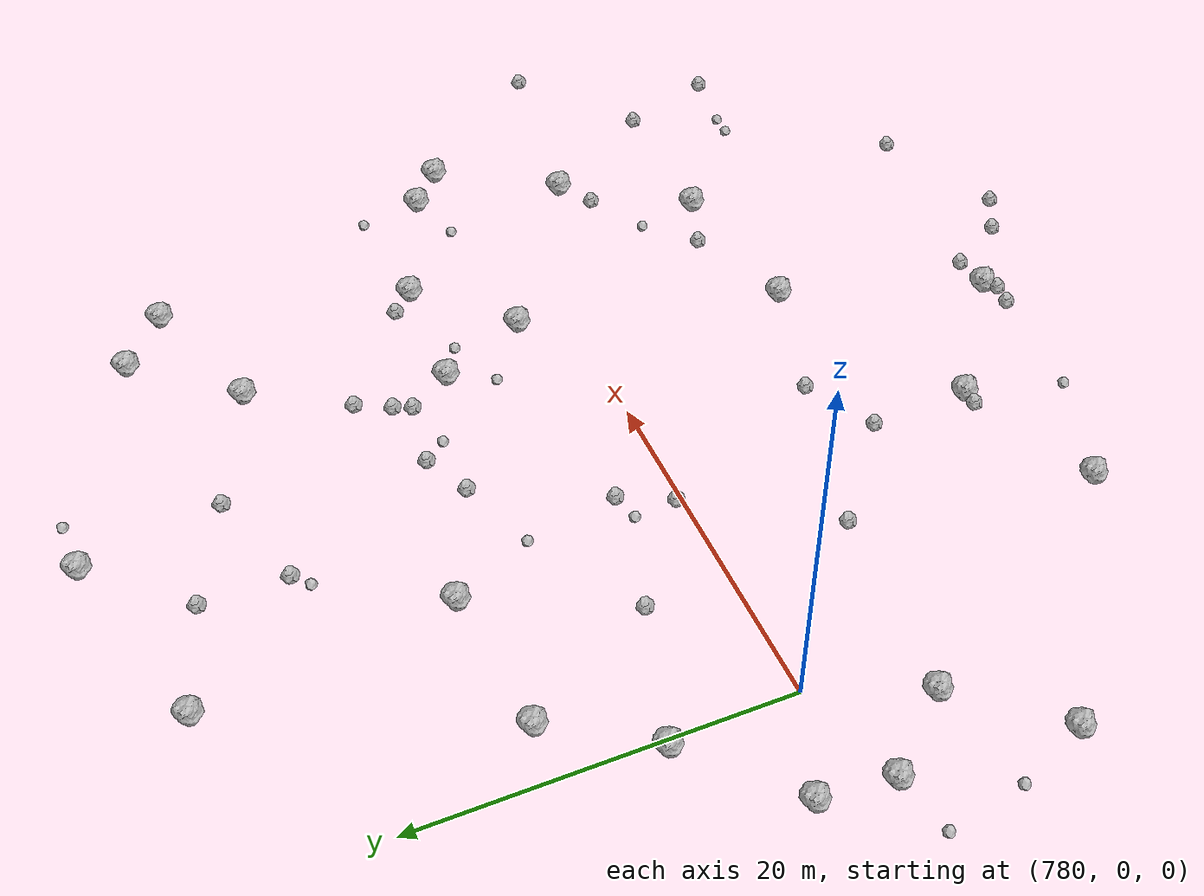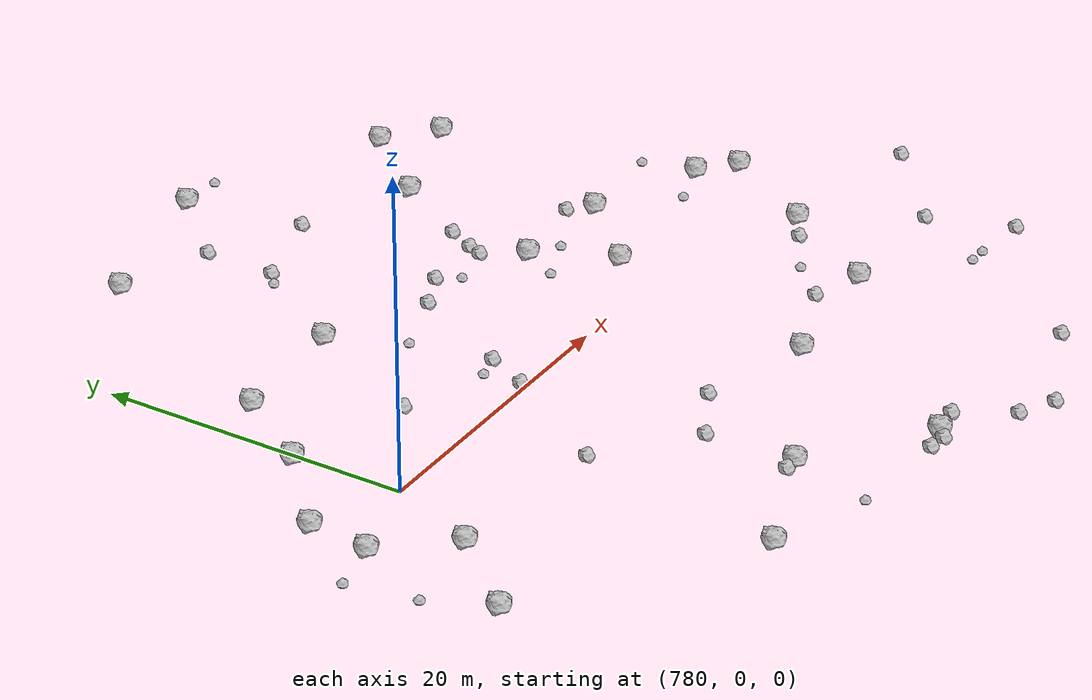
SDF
<sdf version="1.6">
 <world name="default">
  <include><uri>model://sun</uri></include>
  <model name="rock1_20_4">
   <include><uri>model://rock1</uri><pose>806.3064987268513 8.025205310936592 0.5 0 0 0</pose></include>
  </model>
  <model name="rock1_20_5">
   <include><uri>model://rock1</uri><pose>822.9555606875364 2.676687668610221 0.5 0 0 0</pose></include>
  </model>
  <model name="rock1_20_6">
   <include><uri>model://rock1</uri><pose>814.3572840590913 -10.520434354861557 0.5 0 0 0</pose></include>
  </model>
  <model name="rock1_20_7">
   <include><uri>model://rock1</uri><pose>808.6896275081716 2.921602995053746 0.5 0 0 0</pose></include>
  </model>
  <model name="rock1_20_8">
   <include><uri>model://rock1</uri><pose>818.8706226160203 -3.7997460099866913 0.5 0 0 0</pose></include>
  </model>
  <model name="rock1_20_9">
   <include><uri>model://rock1</uri><pose>774.40754797427 2.220916193310643 0.5 0 0 0</pose></include>
  </model>
  <model name="rock1_20_10">
   <include><uri>model://rock1</uri><pose>773.9964374155901 -1.7918443043622538 0.5 0 0 0</pose></include>
  </model>
  <model name="rock1_20_11">
   <include><uri>model://rock1</uri><pose>809.246029431972 18.60565272603567 0.5 0 0 0</pose></include>
  </model>
  <model name="rock1_20_12">
   <include><uri>model://rock1</uri><pose>789.9831138306403 26.739283109549483 0.5 0 0 0</pose></include>
  </model>
  <model name="rock1_20_13">
   <include><uri>model://rock1</uri><pose>805.1921962425655 -11.646871157708254 0.5 0 0 0</pose></include>
  </model>
  <model name="rock1_20_14">
   <include><uri>model://rock1</uri><pose>813.7963101693178 23.86315572506794 0.5 0 0 0</pose></include>
  </model>
  <model name="rock1_20_15">
   <include><uri>model://rock1</uri><pose>773.1378211516776 -10.89469566187055 0.5 0 0 0</pose></include>
  </model>
  <model name="rock1_20_16">
   <include><uri>model://rock1</uri><pose>800.6625170424601 29.532097071985525 0.5 0 0 0</pose></include>
  </model>
  <model name="rock1_20_17">
   <include><uri>model://rock1</uri><pose>779.6508327962232 7.0279550040225445 0.5 0 0 0</pose></include>
  </model>
  <model name="rock1_20_18">
   <include><uri>model://rock1</uri><pose>783.1792318217877 12.296553982741742 0.5 0 0 0</pose></include>
  </model>
  <model name="rock1_20_19">
   <include><uri>model://rock1</uri><pose>801.3471941457568 -22.72176807922282 0.5 0 0 0</pose></include>
  </model>
  <model name="rock1_20_20">
   <include><uri>model://rock1</uri><pose>777.5380353139294 -5.898756767347724 0.5 0 0 0</pose></include>
  </model>
  <model name="rock1_20_21">
   <include><uri>model://rock1</uri><pose>813.4569917175387 7.607824812493078 0.5 0 0 0</pose></include>
  </model>
  <model name="rock1_20_22">
   <include><uri>model://rock1</uri><pose>820.7622371585838 4.574552247312511 0.5 0 0 0</pose></include>
  </model>
  <model name="rock1_20_23">
   <include><uri>model://rock1</uri><pose>786.3167181661951 -20.29467636022186 0.5 0 0 0</pose></include>
  </model>
  <model name="rock1_20_24">
   <include><uri>model://rock1</uri><pose>816.8981477112 21.1912145462882 0.5 0 0 0</pose></include>
  </model>
  <model name="rock1_20_25">
   <include><uri>model://rock1</uri><pose>791.4721378169855 12.973756622785864 0.5 0 0 0</pose></include>
  </model>
  <model name="rock1_20_26">
   <include><uri>model://rock1</uri><pose>794.1677021628007 -17.267890050973705 0.5 0 0 0</pose></include>
  </model>
  <model name="rock2_20_0">
   <include><uri>model://rock2</uri><pose>807.4810318137698 -26.97164186720143 0.3 0 0 0</pose></include>
  </model>
  <model name="rock2_20_1">
   <include><uri>model://rock2</uri><pose>801.914608209898 21.811118977266666 0.3 0 0 0</pose></include>
  </model>
  <model name="rock2_20_2">
   <include><uri>model://rock2</uri><pose>804.6097369805727 10.519365106062601 0.3 0 0 0</pose></include>
  </model>
  <model name="rock2_20_3">
   <include><uri>model://rock2</uri><pose>793.8568523188472 -11.58912035650112 0.3 0 0 0</pose></include>
  </model>
  <model name="rock2_20_4">
   <include><uri>model://rock2</uri><pose>829.4132223627103 -5.457937344478083 0.3 0 0 0</pose></include>
  </model>
  <model name="rock2_20_5">
   <include><uri>model://rock2</uri><pose>793.1156885048775 -17.270866892487085 0.3 0 0 0</pose></include>
  </model>
  <model name="rock2_20_6">
   <include><uri>model://rock2</uri><pose>788.3551899856175 -7.0342792762283075 0.3 0 0 0</pose></include>
  </model>
  <model name="rock2_20_7">
   <include><uri>model://rock2</uri><pose>824.6866574280899 -15.912346215866195 0.3 0 0 0</pose></include>
  </model>
  <model name="rock2_20_8">
   <include><uri>model://rock2</uri><pose>805.0332496080105 11.512177099283818 0.3 0 0 0</pose></include>
  </model>
  <model name="rock2_20_9">
   <include><uri>model://rock2</uri><pose>800.6551186450554 11.15740605237599 0.3 0 0 0</pose></include>
  </model>
  <model name="rock2_20_10">
   <include><uri>model://rock2</uri><pose>806.0049292364317 13.371552423208499 0.3 0 0 0</pose></include>
  </model>
  <model name="rock2_20_11">
   <include><uri>model://rock2</uri><pose>787.3530082503545 4.673410635330939 0.3 0 0 0</pose></include>
  </model>
  <model name="rock2_20_12">
   <include><uri>model://rock2</uri><pose>797.9775485584871 9.934247615816524 0.3 0 0 0</pose></include>
  </model>
  <model name="rock2_20_13">
   <include><uri>model://rock2</uri><pose>822.9001879379118 -10.538586159392782 0.3 0 0 0</pose></include>
  </model>
  <model name="rock2_20_14">
   <include><uri>model://rock2</uri><pose>805.2344615913331 -25.753316332869506 0.3 0 0 0</pose></include>
  </model>
  <model name="rock2_20_15">
   <include><uri>model://rock2</uri><pose>793.0988984675064 0.3397648135921756 0.3 0 0 0</pose></include>
  </model>
  <model name="rock2_20_16">
   <include><uri>model://rock2</uri><pose>797.7731763197594 -9.515744544427104 0.3 0 0 0</pose></include>
  </model>
  <model name="rock2_20_17">
   <include><uri>model://rock2</uri><pose>796.0082427816851 24.69525836178044 0.3 0 0 0</pose></include>
  </model>
  <model name="rock2_20_18">
   <include><uri>model://rock2</uri><pose>814.5526037280752 -23.922727510418405 0.3 0 0 0</pose></include>
  </model>
  <model name="rock2_20_19">
   <include><uri>model://rock2</uri><pose>800.6101993567435 -23.298174703056873 0.3 0 0 0</pose></include>
  </model>
  <model name="rock2_20_20">
   <include><uri>model://rock2</uri><pose>803.2599171301665 -22.431047753159653 0.3 0 0 0</pose></include>
  </model>
  <model name="rock2_20_21">
   <include><uri>model://rock2</uri><pose>795.9968082244204 19.964638511422947 0.3 0 0 0</pose></include>
  </model>
  <model name="rock2_20_22">
   <include><uri>model://rock2</uri><pose>794.4697775526846 3.136603223717792 0.3 0 0 0</pose></include>
  </model>
  <model name="rock2_20_23">
   <include><uri>model://rock2</uri><pose>816.7328491727196 -5.040426373502449 0.3 0 0 0</pose></include>
  </model>
  <model name="rock2_20_24">
   <include><uri>model://rock2</uri><pose>799.3673260608944 -23.126372797793785 0.3 0 0 0</pose></include>
  </model>
  <model name="rock2_20_25">
   <include><uri>model://rock2</uri><pose>812.0732050602356 8.904133810428178 0.3 0 0 0</pose></include>
  </model>
  <model name="rock2_20_26">
   <include><uri>model://rock2</uri><pose>810.942555769937 -9.344270145171503 0.3 0 0 0</pose></include>
  </model>
  <model name="rock3_20_0">
   <include><uri>model://rock3</uri><pose>819.9701555966619 8.08196602694322 0.2 0 0 0</pose></include>
  </model>
  <model name="rock3_20_1">
   <include><uri>model://rock3</uri><pose>817.4095517346393 3.557352941160147 0.2 0 0 0</pose></include>
  </model>
  <model name="rock3_20_2">
   <include><uri>model://rock3</uri><pose>771.3974208528429 -6.909316881646113 0.2 0 0 0</pose></include>
  </model>
  <model name="rock3_20_3">
   <include><uri>model://rock3</uri><pose>808.078484566116 6.800150887934677 0.2 0 0 0</pose></include>
  </model>
  <model name="rock3_20_4">
   <include><uri>model://rock3</uri><pose>819.7658851448386 -15.451970497138237 0.2 0 0 0</pose></include>
  </model>
  <model name="rock3_20_5">
   <include><uri>model://rock3</uri><pose>770.5821451659123 -2.5083207438968387 0.2 0 0 0</pose></include>
  </model>
  <model name="rock3_20_6">
   <include><uri>model://rock3</uri><pose>813.4811471318243 -6.974542114078233 0.2 0 0 0</pose></include>
  </model>
  <model name="rock3_20_7">
   <include><uri>model://rock3</uri><pose>795.1173108480457 19.13823623454948 0.2 0 0 0</pose></include>
  </model>
  <model name="rock3_20_8">
   <include><uri>model://rock3</uri><pose>804.864147303879 5.547038744717796 0.2 0 0 0</pose></include>
  </model>
  <model name="rock3_20_9">
   <include><uri>model://rock3</uri><pose>793.5281657312245 8.318800389760277 0.2 0 0 0</pose></include>
  </model>
  <model name="rock3_20_10">
   <include><uri>model://rock3</uri><pose>792.579402973019 -22.598383533627647 0.2 0 0 0</pose></include>
  </model>
  <model name="rock3_20_11">
   <include><uri>model://rock3</uri><pose>801.6531084826123 9.848111989631825 0.2 0 0 0</pose></include>
  </model>
  <model name="rock3_20_12">
   <include><uri>model://rock3</uri><pose>821.0086795638033 -15.489594562660931 0.2 0 0 0</pose></include>
  </model>
  <model name="rock3_20_13">
   <include><uri>model://rock3</uri><pose>803.5663695958899 29.58047761034591 0.2 0 0 0</pose></include>
  </model>
  <model name="rock3_20_14">
   <include><uri>model://rock3</uri><pose>792.8771721114573 2.713323027152839 0.2 0 0 0</pose></include>
  </model>
 </world>
</sdf>
